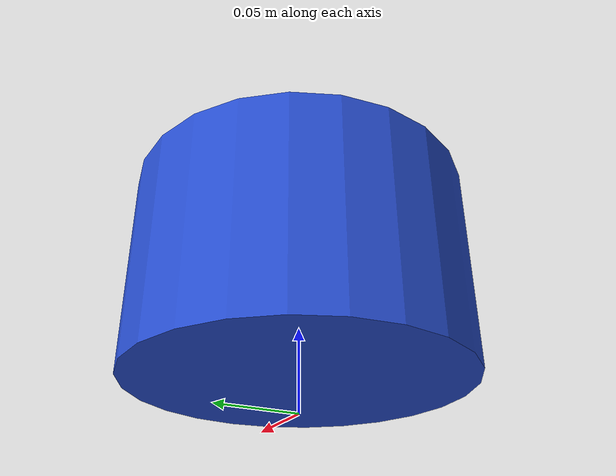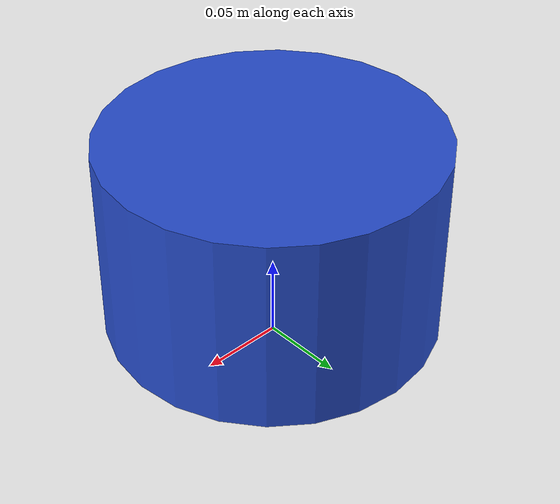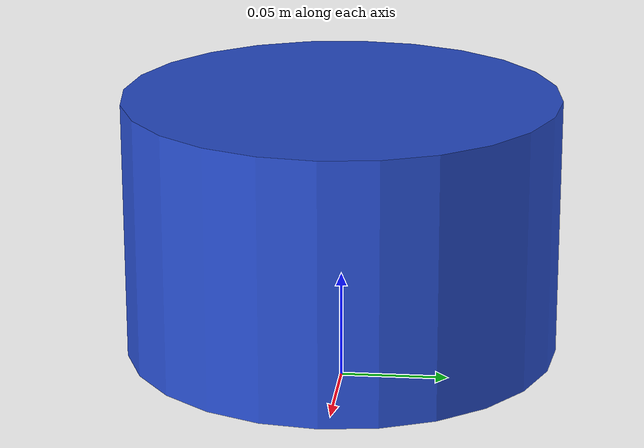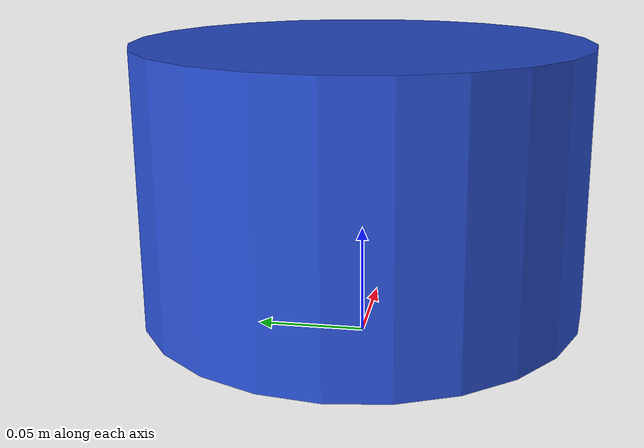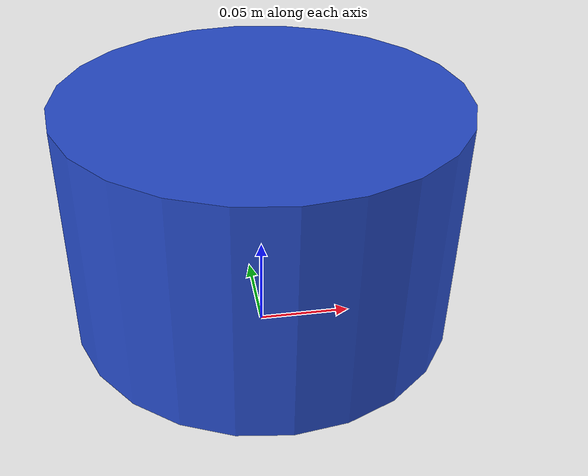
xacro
<?xml version="1.0"?>
<robot xmlns:xacro="http://wiki.ros.org/xacro">

    <link name="base_footprint"/>

    <joint name="base_joint" type="fixed">
        <parent link="base_footprint"/>
        <child link="base_link"/>
        <origin xyz="0.0 0.0 0.076" rpy="0 0 0"/>
    </joint>

    <link name="base_link">
        <visual>
            <origin xyz="0 0 0.0" rpy="0 0 0"/>
            <geometry>
                <cylinder length="0.12" radius="0.10"/>
            </geometry>
            <material name="blue"/>
        </visual>

        <collision>
            <origin xyz="0 0 0.0" rpy="0 0 0"/>
            <geometry>
                <cylinder length="0.12" radius="0.10"/>
            </geometry>
            <material name="blue"/>
        </collision>

        <inertial>
            <mass value="0.2"/>
            <inertia ixx="0.0122666" ixy="0" ixz="0" iyy="0.0122666" iyz="0" izz="0.02"/>
        </inertial>
    </link>

</robot>
